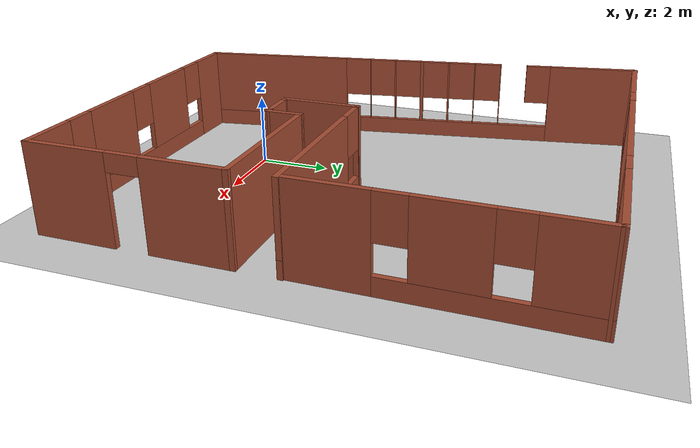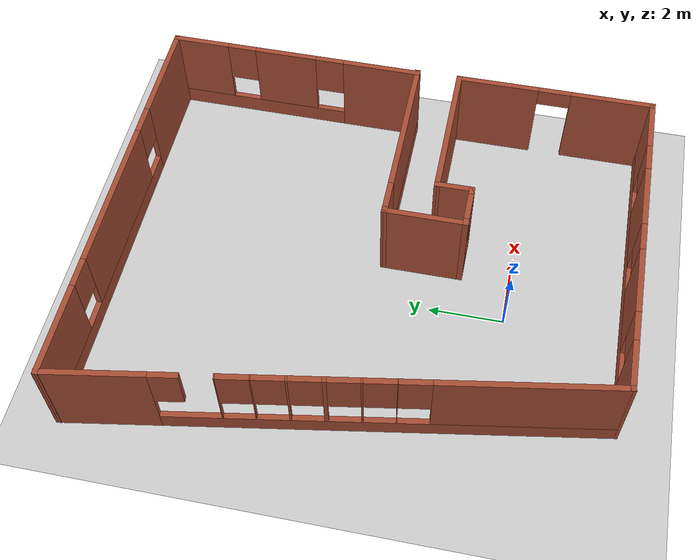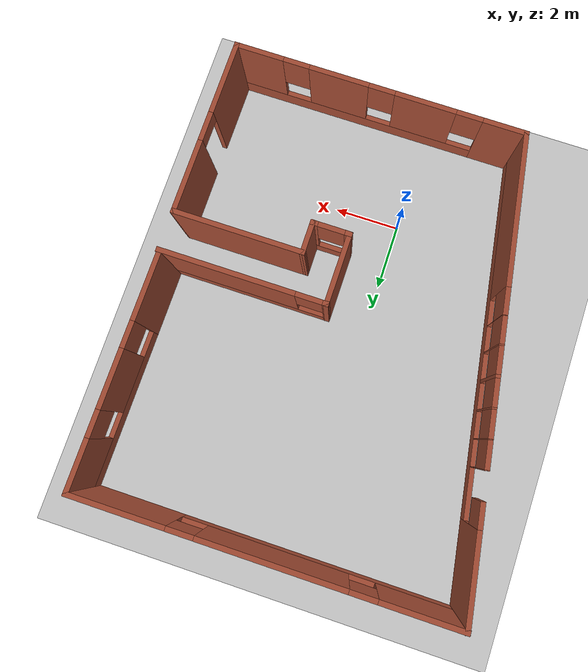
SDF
<sdf version="1.7">
 <world name="default">
  <light name="sun" type="directional">
   <pose>0 0 10 0 -0 0</pose>
   <diffuse>0.8 0.8 0.8 1</diffuse>
   <specular>0.2 0.2 0.2 1</specular>
   <attenuation>
    <range>1000</range>
    <constant>0.9</constant>
    <linear>0.01</linear>
    <quadratic>0.001</quadratic>
   </attenuation>
   <direction>-0.5 0.1 -0.9</direction>
   <spot><inner_angle>0</inner_angle><outer_angle>0</outer_angle><falloff>0</falloff></spot>
  </light>
  <model name="ground_plane">
   <static>1</static>
   <link name="link">
    <collision name="collision">
     <geometry><plane><normal>0 0 1</normal><size>100 100</size></plane></geometry>
     <surface>
      <contact><collide_bitmask>65535</collide_bitmask></contact>
      <friction><ode><mu>100</mu><mu2>50</mu2></ode></friction>
     </surface>
    </collision>
    <visual name="visual">
     <cast_shadows>0</cast_shadows>
     <geometry><plane><normal>0 0 1</normal><size>100 100</size></plane></geometry>
     <material>
      <script><uri>file://media/materials/scripts/gazebo.material</uri><name>Gazebo/Grey</name></script>
     </material>
    </visual>
   </link>
  </model>
  <gravity>0 0 -9.8</gravity>
  <magnetic_field>6e-06 2.3e-05 -4.2e-05</magnetic_field>
  <atmosphere type="adiabatic"/>
  <physics type="ode">
   <max_step_size>0.001</max_step_size>
   <real_time_factor>1</real_time_factor>
   <real_time_update_rate>1000</real_time_update_rate>
  </physics>
  <scene><ambient>0.4 0.4 0.4 1</ambient><background>0.7 0.7 0.7 1</background><shadows>1</shadows></scene>
  <audio><device>default</device></audio>
  <spherical_coordinates>
   <surface_model>EARTH_WGS84</surface_model>
   <latitude_deg>0</latitude_deg>
   <longitude_deg>0</longitude_deg>
   <elevation>0</elevation>
   <heading_deg>0</heading_deg>
  </spherical_coordinates>
  <model name="Untitled">
   <pose>0.573058 3.69092 0 0 -0 0</pose>
   <link name="Wall_18">
    <pose>1.13045 -6.775 0 0 -0 0</pose>
    <visual name="Wall_18_Visual_0">
     <pose>-3.81311 0 1.25 0 -0 0</pose>
     <geometry><box><size>1.37378 0.15 2.5</size></box></geometry>
     <material>
      <script><uri>file://media/materials/scripts/gazebo.material</uri><name>Gazebo/Bricks</name></script>
      <ambient>1 1 1 1</ambient>
     </material>
     <meta><layer>0</layer></meta>
    </visual>
    <collision name="Wall_18_Collision_0">
     <geometry><box><size>1.37378 0.15 2.5</size></box></geometry>
     <pose>-3.81311 0 1.25 0 -0 0</pose>
    </collision>
    <visual name="Wall_18_Visual_1">
     <pose>0.686892 0 0.25 0 -0 0</pose>
     <geometry><box><size>7.62622 0.15 0.5</size></box></geometry>
     <material>
      <script><uri>file://media/materials/scripts/gazebo.material</uri><name>Gazebo/Bricks</name></script>
      <ambient>1 1 1 1</ambient>
     </material>
     <meta><layer>0</layer></meta>
    </visual>
    <collision name="Wall_18_Collision_1">
     <geometry><box><size>7.62622 0.15 0.5</size></box></geometry>
     <pose>0.686892 0 0.25 0 -0 0</pose>
    </collision>
    <visual name="Wall_18_Visual_2">
     <pose>-1.39474 0 1.5 0 -0 0</pose>
     <geometry><box><size>1.86294 0.15 2</size></box></geometry>
     <material>
      <script><uri>file://media/materials/scripts/gazebo.material</uri><name>Gazebo/Bricks</name></script>
      <ambient>1 1 1 1</ambient>
     </material>
     <meta><layer>0</layer></meta>
    </visual>
    <collision name="Wall_18_Collision_2">
     <geometry><box><size>1.86294 0.15 2</size></box></geometry>
     <pose>-1.39474 0 1.5 0 -0 0</pose>
    </collision>
    <visual name="Wall_18_Visual_3">
     <pose>1.25044 0 1.5 0 -0 0</pose>
     <geometry><box><size>1.82743 0.15 2</size></box></geometry>
     <material>
      <script><uri>file://media/materials/scripts/gazebo.material</uri><name>Gazebo/Bricks</name></script>
      <ambient>1 1 1 1</ambient>
     </material>
     <meta><layer>0</layer></meta>
    </visual>
    <collision name="Wall_18_Collision_3">
     <geometry><box><size>1.82743 0.15 2</size></box></geometry>
     <pose>1.25044 0 1.5 0 -0 0</pose>
    </collision>
    <visual name="Wall_18_Visual_4">
     <pose>3.73208 0 1.5 0 -0 0</pose>
     <geometry><box><size>1.53584 0.15 2</size></box></geometry>
     <material>
      <script><uri>file://media/materials/scripts/gazebo.material</uri><name>Gazebo/Bricks</name></script>
      <ambient>1 1 1 1</ambient>
     </material>
     <meta><layer>0</layer></meta>
    </visual>
    <collision name="Wall_18_Collision_4">
     <geometry><box><size>1.53584 0.15 2</size></box></geometry>
     <pose>3.73208 0 1.5 0 -0 0</pose>
    </collision>
    <visual name="Wall_18_Visual_5">
     <pose>-2.72622 0 1.9 0 -0 0</pose>
     <geometry><box><size>0.8 0.15 1.2</size></box></geometry>
     <material>
      <script><uri>file://media/materials/scripts/gazebo.material</uri><name>Gazebo/Bricks</name></script>
      <ambient>1 1 1 1</ambient>
     </material>
     <meta><layer>0</layer></meta>
    </visual>
    <collision name="Wall_18_Collision_5">
     <geometry><box><size>0.8 0.15 1.2</size></box></geometry>
     <pose>-2.72622 0 1.9 0 -0 0</pose>
    </collision>
    <visual name="Wall_18_Visual_6">
     <pose>-0.063275 0 1.9 0 -0 0</pose>
     <geometry><box><size>0.8 0.15 1.2</size></box></geometry>
     <material>
      <script><uri>file://media/materials/scripts/gazebo.material</uri><name>Gazebo/Bricks</name></script>
      <ambient>1 1 1 1</ambient>
     </material>
     <meta><layer>0</layer></meta>
    </visual>
    <collision name="Wall_18_Collision_6">
     <geometry><box><size>0.8 0.15 1.2</size></box></geometry>
     <pose>-0.063275 0 1.9 0 -0 0</pose>
    </collision>
    <visual name="Wall_18_Visual_7">
     <pose>2.56416 0 1.9 0 -0 0</pose>
     <geometry><box><size>0.8 0.15 1.2</size></box></geometry>
     <material>
      <script><uri>file://media/materials/scripts/gazebo.material</uri><name>Gazebo/Bricks</name></script>
      <ambient>1 1 1 1</ambient>
     </material>
     <meta><layer>0</layer></meta>
    </visual>
    <collision name="Wall_18_Collision_7">
     <geometry><box><size>0.8 0.15 1.2</size></box></geometry>
     <pose>2.56416 0 1.9 0 -0 0</pose>
    </collision>
   </link>
   <link name="Wall_20">
    <pose>5.55545 -4.1 0 0 -0 1.5708</pose>
    <visual name="Wall_20_Visual_0">
     <pose>-1.60037 0 1.25 0 -0 0</pose>
     <geometry><box><size>2.29927 0.15 2.5</size></box></geometry>
     <material>
      <script><uri>file://media/materials/scripts/gazebo.material</uri><name>Gazebo/Bricks</name></script>
      <ambient>1 1 1 1</ambient>
     </material>
     <meta><layer>0</layer></meta>
    </visual>
    <collision name="Wall_20_Collision_0">
     <geometry><box><size>2.29927 0.15 2.5</size></box></geometry>
     <pose>-1.60037 0 1.25 0 -0 0</pose>
    </collision>
    <visual name="Wall_20_Visual_1">
     <pose>1.59963 0 1.25 0 -0 0</pose>
     <geometry><box><size>2.30073 0.15 2.5</size></box></geometry>
     <material>
      <script><uri>file://media/materials/scripts/gazebo.material</uri><name>Gazebo/Bricks</name></script>
      <ambient>1 1 1 1</ambient>
     </material>
     <meta><layer>0</layer></meta>
    </visual>
    <collision name="Wall_20_Collision_1">
     <geometry><box><size>2.30073 0.15 2.5</size></box></geometry>
     <pose>1.59963 0 1.25 0 -0 0</pose>
    </collision>
    <visual name="Wall_20_Visual_2">
     <pose>-0.000732 0 2.25 0 -0 0</pose>
     <geometry><box><size>0.9 0.15 0.5</size></box></geometry>
     <material>
      <script><uri>file://media/materials/scripts/gazebo.material</uri><name>Gazebo/Bricks</name></script>
      <ambient>1 1 1 1</ambient>
     </material>
     <meta><layer>0</layer></meta>
    </visual>
    <collision name="Wall_20_Collision_2">
     <geometry><box><size>0.9 0.15 0.5</size></box></geometry>
     <pose>-0.000732 0 2.25 0 -0 0</pose>
    </collision>
   </link>
   <link name="Wall_22">
    <collision name="Wall_22_Collision">
     <geometry><box><size>2.25 0.15 2.5</size></box></geometry>
     <pose>0 0 1.25 0 -0 0</pose>
    </collision>
    <visual name="Wall_22_Visual">
     <pose>0 0 1.25 0 -0 0</pose>
     <geometry><box><size>2.25 0.15 2.5</size></box></geometry>
     <material>
      <script><uri>file://media/materials/scripts/gazebo.material</uri><name>Gazebo/Bricks</name></script>
      <ambient>1 1 1 1</ambient>
     </material>
     <meta><layer>0</layer></meta>
    </visual>
    <pose>0.609251 -1.28616 0 0 -0 1.5708</pose>
   </link>
   <link name="Wall_23">
    <pose>3.08235 -0.240427 0 0 -0 -0.000174</pose>
    <visual name="Wall_23_Visual_0">
     <pose>-2.45628 0 1.25 0 -0 0</pose>
     <geometry><box><size>0.183654 0.15 2.5</size></box></geometry>
     <material>
      <script><uri>file://media/materials/scripts/gazebo.material</uri><name>Gazebo/Bricks</name></script>
      <ambient>1 1 1 1</ambient>
     </material>
     <meta><layer>0</layer></meta>
    </visual>
    <collision name="Wall_23_Collision_0">
     <geometry><box><size>0.183654 0.15 2.5</size></box></geometry>
     <pose>-2.45628 0 1.25 0 -0 0</pose>
    </collision>
    <visual name="Wall_23_Visual_1">
     <pose>0.091827 0 0.25 0 -0 0</pose>
     <geometry><box><size>4.91256 0.15 0.5</size></box></geometry>
     <material>
      <script><uri>file://media/materials/scripts/gazebo.material</uri><name>Gazebo/Bricks</name></script>
      <ambient>1 1 1 1</ambient>
     </material>
     <meta><layer>0</layer></meta>
    </visual>
    <collision name="Wall_23_Collision_1">
     <geometry><box><size>4.91256 0.15 0.5</size></box></geometry>
     <pose>0.091827 0 0.25 0 -0 0</pose>
    </collision>
    <visual name="Wall_23_Visual_2">
     <pose>0.491827 0 1.5 0 -0 0</pose>
     <geometry><box><size>4.11256 0.15 2</size></box></geometry>
     <material>
      <script><uri>file://media/materials/scripts/gazebo.material</uri><name>Gazebo/Bricks</name></script>
      <ambient>1 1 1 1</ambient>
     </material>
     <meta><layer>0</layer></meta>
    </visual>
    <collision name="Wall_23_Collision_2">
     <geometry><box><size>4.11256 0.15 2</size></box></geometry>
     <pose>0.491827 0 1.5 0 -0 0</pose>
    </collision>
    <visual name="Wall_23_Visual_3">
     <pose>-1.96445 0 1.9 0 -0 0</pose>
     <geometry><box><size>0.8 0.15 1.2</size></box></geometry>
     <material>
      <script><uri>file://media/materials/scripts/gazebo.material</uri><name>Gazebo/Bricks</name></script>
      <ambient>1 1 1 1</ambient>
     </material>
     <meta><layer>0</layer></meta>
    </visual>
    <collision name="Wall_23_Collision_3">
     <geometry><box><size>0.8 0.15 1.2</size></box></geometry>
     <pose>-1.96445 0 1.9 0 -0 0</pose>
    </collision>
   </link>
   <link name="Wall_24">
    <pose>5.53769 3.26707 0 0 -0 1.56574</pose>
    <visual name="Wall_24_Visual_0">
     <pose>-2.48737 0 1.25 0 -0 0</pose>
     <geometry><box><size>2.19122 0.15 2.5</size></box></geometry>
     <material>
      <script><uri>file://media/materials/scripts/gazebo.material</uri><name>Gazebo/Bricks</name></script>
      <ambient>1 1 1 1</ambient>
     </material>
     <meta><layer>0</layer></meta>
    </visual>
    <collision name="Wall_24_Collision_0">
     <geometry><box><size>2.19122 0.15 2.5</size></box></geometry>
     <pose>-2.48737 0 1.25 0 -0 0</pose>
    </collision>
    <visual name="Wall_24_Visual_1">
     <pose>1.09561 0 0.25 0 -0 0</pose>
     <geometry><box><size>4.97473 0.15 0.5</size></box></geometry>
     <material>
      <script><uri>file://media/materials/scripts/gazebo.material</uri><name>Gazebo/Bricks</name></script>
      <ambient>1 1 1 1</ambient>
     </material>
     <meta><layer>0</layer></meta>
    </visual>
    <collision name="Wall_24_Collision_1">
     <geometry><box><size>4.97473 0.15 0.5</size></box></geometry>
     <pose>1.09561 0 0.25 0 -0 0</pose>
    </collision>
    <visual name="Wall_24_Visual_2">
     <pose>0.286439 0 1.5 0 -0 0</pose>
     <geometry><box><size>1.75639 0.15 2</size></box></geometry>
     <material>
      <script><uri>file://media/materials/scripts/gazebo.material</uri><name>Gazebo/Bricks</name></script>
      <ambient>1 1 1 1</ambient>
     </material>
     <meta><layer>0</layer></meta>
    </visual>
    <collision name="Wall_24_Collision_2">
     <geometry><box><size>1.75639 0.15 2</size></box></geometry>
     <pose>0.286439 0 1.5 0 -0 0</pose>
    </collision>
    <visual name="Wall_24_Visual_3">
     <pose>2.7738 0 1.5 0 -0 0</pose>
     <geometry><box><size>1.61834 0.15 2</size></box></geometry>
     <material>
      <script><uri>file://media/materials/scripts/gazebo.material</uri><name>Gazebo/Bricks</name></script>
      <ambient>1 1 1 1</ambient>
     </material>
     <meta><layer>0</layer></meta>
    </visual>
    <collision name="Wall_24_Collision_3">
     <geometry><box><size>1.61834 0.15 2</size></box></geometry>
     <pose>2.7738 0 1.5 0 -0 0</pose>
    </collision>
    <visual name="Wall_24_Visual_4">
     <pose>-0.991756 0 1.9 0 -0 0</pose>
     <geometry><box><size>0.8 0.15 1.2</size></box></geometry>
     <material>
      <script><uri>file://media/materials/scripts/gazebo.material</uri><name>Gazebo/Bricks</name></script>
      <ambient>1 1 1 1</ambient>
     </material>
     <meta><layer>0</layer></meta>
    </visual>
    <collision name="Wall_24_Collision_4">
     <geometry><box><size>0.8 0.15 1.2</size></box></geometry>
     <pose>-0.991756 0 1.9 0 -0 0</pose>
    </collision>
    <visual name="Wall_24_Visual_5">
     <pose>1.56463 0 1.9 0 -0 0</pose>
     <geometry><box><size>0.8 0.15 1.2</size></box></geometry>
     <material>
      <script><uri>file://media/materials/scripts/gazebo.material</uri><name>Gazebo/Bricks</name></script>
      <ambient>1 1 1 1</ambient>
     </material>
     <meta><layer>0</layer></meta>
    </visual>
    <collision name="Wall_24_Collision_5">
     <geometry><box><size>0.8 0.15 1.2</size></box></geometry>
     <pose>1.56463 0 1.9 0 -0 0</pose>
    </collision>
   </link>
   <link name="Wall_25">
    <pose>0.005447 6.775 0 0 -0 3.14159</pose>
    <visual name="Wall_25_Visual_0">
     <pose>-4.18247 0 1.25 0 -0 0</pose>
     <geometry><box><size>2.88506 0.15 2.5</size></box></geometry>
     <material>
      <script><uri>file://media/materials/scripts/gazebo.material</uri><name>Gazebo/Bricks</name></script>
      <ambient>1 1 1 1</ambient>
     </material>
     <meta><layer>0</layer></meta>
    </visual>
    <collision name="Wall_25_Collision_0">
     <geometry><box><size>2.88506 0.15 2.5</size></box></geometry>
     <pose>-4.18247 0 1.25 0 -0 0</pose>
    </collision>
    <visual name="Wall_25_Visual_1">
     <pose>1.44253 0 0.25 0 -0 0</pose>
     <geometry><box><size>8.36494 0.15 0.5</size></box></geometry>
     <material>
      <script><uri>file://media/materials/scripts/gazebo.material</uri><name>Gazebo/Bricks</name></script>
      <ambient>1 1 1 1</ambient>
     </material>
     <meta><layer>0</layer></meta>
    </visual>
    <collision name="Wall_25_Collision_1">
     <geometry><box><size>8.36494 0.15 0.5</size></box></geometry>
     <pose>1.44253 0 0.25 0 -0 0</pose>
    </collision>
    <visual name="Wall_25_Visual_2">
     <pose>0.198733 0 1.5 0 -0 0</pose>
     <geometry><box><size>4.27734 0.15 2</size></box></geometry>
     <material>
      <script><uri>file://media/materials/scripts/gazebo.material</uri><name>Gazebo/Bricks</name></script>
      <ambient>1 1 1 1</ambient>
     </material>
     <meta><layer>0</layer></meta>
    </visual>
    <collision name="Wall_25_Collision_2">
     <geometry><box><size>4.27734 0.15 2</size></box></geometry>
     <pose>0.198733 0 1.5 0 -0 0</pose>
    </collision>
    <visual name="Wall_25_Visual_3">
     <pose>4.3812 0 1.5 0 -0 0</pose>
     <geometry><box><size>2.4876 0.15 2</size></box></geometry>
     <material>
      <script><uri>file://media/materials/scripts/gazebo.material</uri><name>Gazebo/Bricks</name></script>
      <ambient>1 1 1 1</ambient>
     </material>
     <meta><layer>0</layer></meta>
    </visual>
    <collision name="Wall_25_Collision_3">
     <geometry><box><size>2.4876 0.15 2</size></box></geometry>
     <pose>4.3812 0 1.5 0 -0 0</pose>
    </collision>
    <visual name="Wall_25_Visual_4">
     <pose>-2.33994 0 1.9 0 -0 0</pose>
     <geometry><box><size>0.8 0.15 1.2</size></box></geometry>
     <material>
      <script><uri>file://media/materials/scripts/gazebo.material</uri><name>Gazebo/Bricks</name></script>
      <ambient>1 1 1 1</ambient>
     </material>
     <meta><layer>0</layer></meta>
    </visual>
    <collision name="Wall_25_Collision_4">
     <geometry><box><size>0.8 0.15 1.2</size></box></geometry>
     <pose>-2.33994 0 1.9 0 -0 0</pose>
    </collision>
    <visual name="Wall_25_Visual_5">
     <pose>2.7374 0 1.9 0 -0 0</pose>
     <geometry><box><size>0.8 0.15 1.2</size></box></geometry>
     <material>
      <script><uri>file://media/materials/scripts/gazebo.material</uri><name>Gazebo/Bricks</name></script>
      <ambient>1 1 1 1</ambient>
     </material>
     <meta><layer>0</layer></meta>
    </visual>
    <collision name="Wall_25_Collision_5">
     <geometry><box><size>0.8 0.15 1.2</size></box></geometry>
     <pose>2.7374 0 1.9 0 -0 0</pose>
    </collision>
   </link>
   <link name="Wall_26">
    <pose>-4.41955 0 0 0 -0 -1.40625</pose>
    <visual name="Wall_26_Visual_0">
     <pose>-5.61622 0 1.25 0 -0 0</pose>
     <geometry><box><size>2.65309 0.15 2.5</size></box></geometry>
     <material>
      <script><uri>file://media/materials/scripts/gazebo.material</uri><name>Gazebo/Bricks</name></script>
      <ambient>1 1 1 1</ambient>
     </material>
     <meta><layer>0</layer></meta>
    </visual>
    <collision name="Wall_26_Collision_0">
     <geometry><box><size>2.65309 0.15 2.5</size></box></geometry>
     <pose>-5.61622 0 1.25 0 -0 0</pose>
    </collision>
    <visual name="Wall_26_Visual_1">
     <pose>1.32655 0 0.25 0 -0 0</pose>
     <geometry><box><size>11.2324 0.15 0.5</size></box></geometry>
     <material>
      <script><uri>file://media/materials/scripts/gazebo.material</uri><name>Gazebo/Bricks</name></script>
      <ambient>1 1 1 1</ambient>
     </material>
     <meta><layer>0</layer></meta>
    </visual>
    <collision name="Wall_26_Collision_1">
     <geometry><box><size>11.2324 0.15 0.5</size></box></geometry>
     <pose>1.32655 0 0.25 0 -0 0</pose>
    </collision>
    <visual name="Wall_26_Visual_2">
     <pose>-2.74146 0 1.5 0 -0 0</pose>
     <geometry><box><size>0.026166 0.15 2</size></box></geometry>
     <material>
      <script><uri>file://media/materials/scripts/gazebo.material</uri><name>Gazebo/Bricks</name></script>
      <ambient>1 1 1 1</ambient>
     </material>
     <meta><layer>0</layer></meta>
    </visual>
    <collision name="Wall_26_Collision_2">
     <geometry><box><size>0.026166 0.15 2</size></box></geometry>
     <pose>-2.74146 0 1.5 0 -0 0</pose>
    </collision>
    <visual name="Wall_26_Visual_3">
     <pose>-1.91519 0 1.5 0 -0 0</pose>
     <geometry><box><size>0.026365 0.15 2</size></box></geometry>
     <material>
      <script><uri>file://media/materials/scripts/gazebo.material</uri><name>Gazebo/Bricks</name></script>
      <ambient>1 1 1 1</ambient>
     </material>
     <meta><layer>0</layer></meta>
    </visual>
    <collision name="Wall_26_Collision_3">
     <geometry><box><size>0.026365 0.15 2</size></box></geometry>
     <pose>-1.91519 0 1.5 0 -0 0</pose>
    </collision>
    <visual name="Wall_26_Visual_4">
     <pose>-1.07722 0 1.5 0 -0 0</pose>
     <geometry><box><size>0.049585 0.15 2</size></box></geometry>
     <material>
      <script><uri>file://media/materials/scripts/gazebo.material</uri><name>Gazebo/Bricks</name></script>
      <ambient>1 1 1 1</ambient>
     </material>
     <meta><layer>0</layer></meta>
    </visual>
    <collision name="Wall_26_Collision_4">
     <geometry><box><size>0.049585 0.15 2</size></box></geometry>
     <pose>-1.07722 0 1.5 0 -0 0</pose>
    </collision>
    <visual name="Wall_26_Visual_5">
     <pose>-0.202793 0 1.5 0 -0 0</pose>
     <geometry><box><size>0.099259 0.15 2</size></box></geometry>
     <material>
      <script><uri>file://media/materials/scripts/gazebo.material</uri><name>Gazebo/Bricks</name></script>
      <ambient>1 1 1 1</ambient>
     </material>
     <meta><layer>0</layer></meta>
    </visual>
    <collision name="Wall_26_Collision_5">
     <geometry><box><size>0.099259 0.15 2</size></box></geometry>
     <pose>-0.202793 0 1.5 0 -0 0</pose>
    </collision>
    <visual name="Wall_26_Visual_6">
     <pose>0.668322 0 1.5 0 -0 0</pose>
     <geometry><box><size>0.042972 0.15 2</size></box></geometry>
     <material>
      <script><uri>file://media/materials/scripts/gazebo.material</uri><name>Gazebo/Bricks</name></script>
      <ambient>1 1 1 1</ambient>
     </material>
     <meta><layer>0</layer></meta>
    </visual>
    <collision name="Wall_26_Collision_6">
     <geometry><box><size>0.042972 0.15 2</size></box></geometry>
     <pose>0.668322 0 1.5 0 -0 0</pose>
    </collision>
    <visual name="Wall_26_Visual_7">
     <pose>1.49799 0 1.5 0 -0 0</pose>
     <geometry><box><size>0.016372 0.15 2</size></box></geometry>
     <material>
      <script><uri>file://media/materials/scripts/gazebo.material</uri><name>Gazebo/Bricks</name></script>
      <ambient>1 1 1 1</ambient>
     </material>
     <meta><layer>0</layer></meta>
    </visual>
    <collision name="Wall_26_Collision_7">
     <geometry><box><size>0.016372 0.15 2</size></box></geometry>
     <pose>1.49799 0 1.5 0 -0 0</pose>
    </collision>
    <visual name="Wall_26_Visual_8">
     <pose>4.62447 0 1.5 0 -0 0</pose>
     <geometry><box><size>4.63659 0.15 2</size></box></geometry>
     <material>
      <script><uri>file://media/materials/scripts/gazebo.material</uri><name>Gazebo/Bricks</name></script>
      <ambient>1 1 1 1</ambient>
     </material>
     <meta><layer>0</layer></meta>
    </visual>
    <collision name="Wall_26_Collision_8">
     <geometry><box><size>4.63659 0.15 2</size></box></geometry>
     <pose>4.62447 0 1.5 0 -0 0</pose>
    </collision>
    <visual name="Wall_26_Visual_9">
     <pose>-3.92211 0 1.9 0 -0 0</pose>
     <geometry><box><size>0.735134 0.15 1.2</size></box></geometry>
     <material>
      <script><uri>file://media/materials/scripts/gazebo.material</uri><name>Gazebo/Bricks</name></script>
      <ambient>1 1 1 1</ambient>
     </material>
     <meta><layer>0</layer></meta>
    </visual>
    <collision name="Wall_26_Collision_9">
     <geometry><box><size>0.735134 0.15 1.2</size></box></geometry>
     <pose>-3.92211 0 1.9 0 -0 0</pose>
    </collision>
    <visual name="Wall_26_Visual_10">
     <pose>-2.32837 0 1.9 0 -0 0</pose>
     <geometry><box><size>0.8 0.15 1.2</size></box></geometry>
     <material>
      <script><uri>file://media/materials/scripts/gazebo.material</uri><name>Gazebo/Bricks</name></script>
      <ambient>1 1 1 1</ambient>
     </material>
     <meta><layer>0</layer></meta>
    </visual>
    <collision name="Wall_26_Collision_10">
     <geometry><box><size>0.8 0.15 1.2</size></box></geometry>
     <pose>-2.32837 0 1.9 0 -0 0</pose>
    </collision>
    <visual name="Wall_26_Visual_11">
     <pose>-1.50201 0 1.9 0 -0 0</pose>
     <geometry><box><size>0.8 0.15 1.2</size></box></geometry>
     <material>
      <script><uri>file://media/materials/scripts/gazebo.material</uri><name>Gazebo/Bricks</name></script>
      <ambient>1 1 1 1</ambient>
     </material>
     <meta><layer>0</layer></meta>
    </visual>
    <collision name="Wall_26_Collision_11">
     <geometry><box><size>0.8 0.15 1.2</size></box></geometry>
     <pose>-1.50201 0 1.9 0 -0 0</pose>
    </collision>
    <visual name="Wall_26_Visual_12">
     <pose>-0.652423 0 1.9 0 -0 0</pose>
     <geometry><box><size>0.8 0.15 1.2</size></box></geometry>
     <material>
      <script><uri>file://media/materials/scripts/gazebo.material</uri><name>Gazebo/Bricks</name></script>
      <ambient>1 1 1 1</ambient>
     </material>
     <meta><layer>0</layer></meta>
    </visual>
    <collision name="Wall_26_Collision_12">
     <geometry><box><size>0.8 0.15 1.2</size></box></geometry>
     <pose>-0.652423 0 1.9 0 -0 0</pose>
    </collision>
    <visual name="Wall_26_Visual_13">
     <pose>0.246836 0 1.9 0 -0 0</pose>
     <geometry><box><size>0.8 0.15 1.2</size></box></geometry>
     <material>
      <script><uri>file://media/materials/scripts/gazebo.material</uri><name>Gazebo/Bricks</name></script>
      <ambient>1 1 1 1</ambient>
     </material>
     <meta><layer>0</layer></meta>
    </visual>
    <collision name="Wall_26_Collision_13">
     <geometry><box><size>0.8 0.15 1.2</size></box></geometry>
     <pose>0.246836 0 1.9 0 -0 0</pose>
    </collision>
    <visual name="Wall_26_Visual_14">
     <pose>1.08981 0 1.9 0 -0 0</pose>
     <geometry><box><size>0.8 0.15 1.2</size></box></geometry>
     <material>
      <script><uri>file://media/materials/scripts/gazebo.material</uri><name>Gazebo/Bricks</name></script>
      <ambient>1 1 1 1</ambient>
     </material>
     <meta><layer>0</layer></meta>
    </visual>
    <collision name="Wall_26_Collision_14">
     <geometry><box><size>0.8 0.15 1.2</size></box></geometry>
     <pose>1.08981 0 1.9 0 -0 0</pose>
    </collision>
    <visual name="Wall_26_Visual_15">
     <pose>1.90618 0 1.9 0 -0 0</pose>
     <geometry><box><size>0.8 0.15 1.2</size></box></geometry>
     <material>
      <script><uri>file://media/materials/scripts/gazebo.material</uri><name>Gazebo/Bricks</name></script>
      <ambient>1 1 1 1</ambient>
     </material>
     <meta><layer>0</layer></meta>
    </visual>
    <collision name="Wall_26_Collision_15">
     <geometry><box><size>0.8 0.15 1.2</size></box></geometry>
     <pose>1.90618 0 1.9 0 -0 0</pose>
    </collision>
   </link>
   <link name="Wall_28">
    <collision name="Wall_28_Collision">
     <geometry><box><size>4 0.15 2.5</size></box></geometry>
     <pose>0 0 1.25 0 -0 0</pose>
    </collision>
    <visual name="Wall_28_Visual">
     <pose>0 0 1.25 0 -0 0</pose>
     <geometry><box><size>4 0.15 2.5</size></box></geometry>
     <material>
      <script><uri>file://media/materials/scripts/gazebo.material</uri><name>Gazebo/Bricks</name></script>
      <ambient>1 1 1 1</ambient>
     </material>
     <meta><layer>0</layer></meta>
    </visual>
    <pose>3.63045 -1.425 0 0 -0 3.14159</pose>
   </link>
   <link name="Wall_30">
    <pose>1.15925 -2.33616 0 0 -0 0</pose>
    <visual name="Wall_30_Visual_0">
     <pose>-0.516495 0 1.25 0 -0 0</pose>
     <geometry><box><size>0.217009 0.15 2.5</size></box></geometry>
     <material>
      <script><uri>file://media/materials/scripts/gazebo.material</uri><name>Gazebo/Bricks</name></script>
      <ambient>1 1 1 1</ambient>
     </material>
     <meta><layer>0</layer></meta>
    </visual>
    <collision name="Wall_30_Collision_0">
     <geometry><box><size>0.217009 0.15 2.5</size></box></geometry>
     <pose>-0.516495 0 1.25 0 -0 0</pose>
    </collision>
    <visual name="Wall_30_Visual_1">
     <pose>0.108505 0 0.25 0 -0 0</pose>
     <geometry><box><size>1.03299 0.15 0.5</size></box></geometry>
     <material>
      <script><uri>file://media/materials/scripts/gazebo.material</uri><name>Gazebo/Bricks</name></script>
      <ambient>1 1 1 1</ambient>
     </material>
     <meta><layer>0</layer></meta>
    </visual>
    <collision name="Wall_30_Collision_1">
     <geometry><box><size>1.03299 0.15 0.5</size></box></geometry>
     <pose>0.108505 0 0.25 0 -0 0</pose>
    </collision>
    <visual name="Wall_30_Visual_2">
     <pose>0.508505 0 1.5 0 -0 0</pose>
     <geometry><box><size>0.232991 0.15 2</size></box></geometry>
     <material>
      <script><uri>file://media/materials/scripts/gazebo.material</uri><name>Gazebo/Bricks</name></script>
      <ambient>1 1 1 1</ambient>
     </material>
     <meta><layer>0</layer></meta>
    </visual>
    <collision name="Wall_30_Collision_2">
     <geometry><box><size>0.232991 0.15 2</size></box></geometry>
     <pose>0.508505 0 1.5 0 -0 0</pose>
    </collision>
    <visual name="Wall_30_Visual_3">
     <pose>-0.007991 0 1.9 0 -0 0</pose>
     <geometry><box><size>0.8 0.15 1.2</size></box></geometry>
     <material>
      <script><uri>file://media/materials/scripts/gazebo.material</uri><name>Gazebo/Bricks</name></script>
      <ambient>1 1 1 1</ambient>
     </material>
     <meta><layer>0</layer></meta>
    </visual>
    <collision name="Wall_30_Collision_3">
     <geometry><box><size>0.8 0.15 1.2</size></box></geometry>
     <pose>-0.007991 0 1.9 0 -0 0</pose>
    </collision>
   </link>
   <link name="Wall_31">
    <collision name="Wall_31_Collision">
     <geometry><box><size>1.06117 0.15 2.5</size></box></geometry>
     <pose>0 0 1.25 0 -0 0</pose>
    </collision>
    <visual name="Wall_31_Visual">
     <pose>0 0 1.25 0 -0 0</pose>
     <geometry><box><size>1.06117 0.15 2.5</size></box></geometry>
     <material>
      <script><uri>file://media/materials/scripts/gazebo.material</uri><name>Gazebo/Bricks</name></script>
      <ambient>1 1 1 1</ambient>
     </material>
     <meta><layer>0</layer></meta>
    </visual>
    <pose>1.70735 -1.88058 0 0 -0 1.57497</pose>
   </link>
   <static>1</static>
  </model>
 </world>
</sdf>
